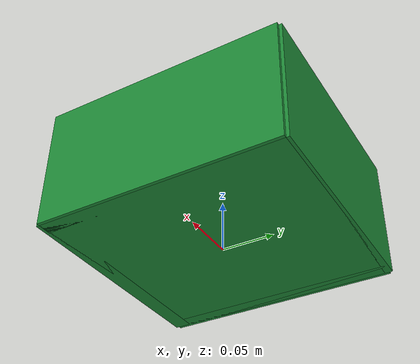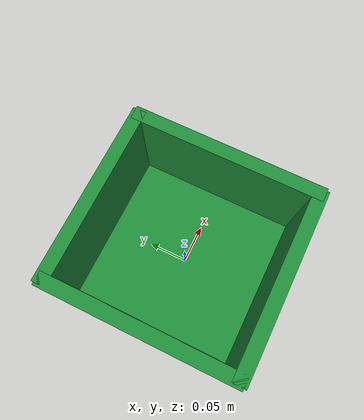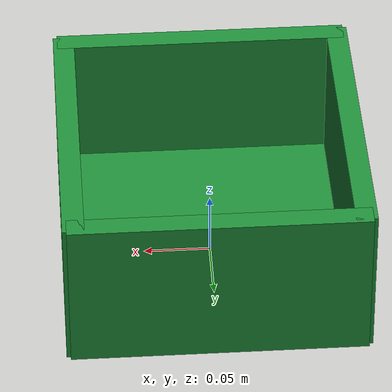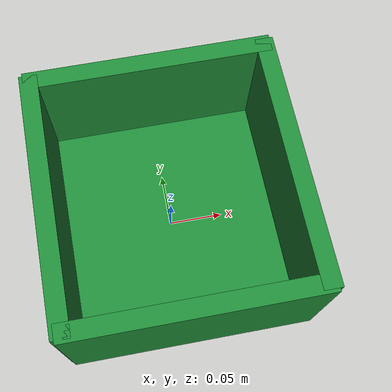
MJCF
<mujoco model="composuite_target_bin">
  <asset>
    <material name="target_green" rgba="0.12 0.55 0.22 1" shininess="0.25"/>
  </asset>
  <worldbody>
    <body>
      <body name="object">
        <geom name="bottom_visual" type="box" pos="0 0 0.008" size="0.110 0.115 0.008"
              material="target_green" contype="0" conaffinity="0" group="1"/>
        <geom name="front_visual" type="box" pos="-0.105 0 0.060" size="0.008 0.115 0.060"
              material="target_green" contype="0" conaffinity="0" group="1"/>
        <geom name="back_visual" type="box" pos="0.105 0 0.060" size="0.008 0.115 0.060"
              material="target_green" contype="0" conaffinity="0" group="1"/>
        <geom name="left_visual" type="box" pos="0 -0.110 0.060" size="0.110 0.008 0.060"
              material="target_green" contype="0" conaffinity="0" group="1"/>
        <geom name="right_visual" type="box" pos="0 0.110 0.060" size="0.110 0.008 0.060"
              material="target_green" contype="0" conaffinity="0" group="1"/>
        <geom name="bottom_collision" type="box" pos="0 0 0.008" size="0.110 0.115 0.008"
              mass="2" friction="1 0.3 0.1" group="0" rgba="0.3 0.3 1 0.2"/>
        <geom name="front_collision" type="box" pos="-0.105 0 0.060" size="0.008 0.115 0.060"
              mass="1" friction="1 0.3 0.1" group="0" rgba="0.3 0.3 1 0.2"/>
        <geom name="back_collision" type="box" pos="0.105 0 0.060" size="0.008 0.115 0.060"
              mass="1" friction="1 0.3 0.1" group="0" rgba="0.3 0.3 1 0.2"/>
        <geom name="left_collision" type="box" pos="0 -0.110 0.060" size="0.110 0.008 0.060"
              mass="1" friction="1 0.3 0.1" group="0" rgba="0.3 0.3 1 0.2"/>
        <geom name="right_collision" type="box" pos="0 0.110 0.060" size="0.110 0.008 0.060"
              mass="1" friction="1 0.3 0.1" group="0" rgba="0.3 0.3 1 0.2"/>
        <site name="contain_region" type="box" pos="0 0 0.075" quat="1 0 0 0" size="0.095 0.098 0.075"
              rgba="0 0 0 0" group="3"/>
      </body>
      <site name="bottom_site" pos="0 0 0" size="0.005" rgba="0 0 0 0"/>
      <site name="top_site" pos="0 0 0.135" size="0.005" rgba="0 0 0 0"/>
      <site name="horizontal_radius_site" pos="0.118 0.123 0" size="0.005" rgba="0 0 0 0"/>
    </body>
  </worldbody>
</mujoco>
